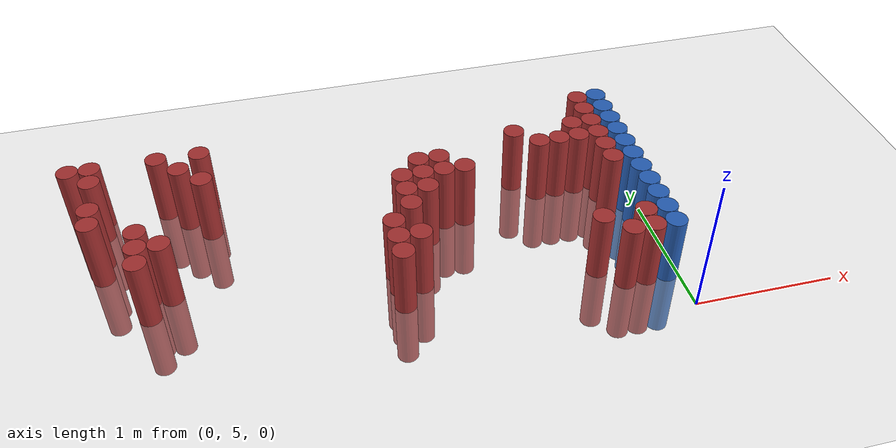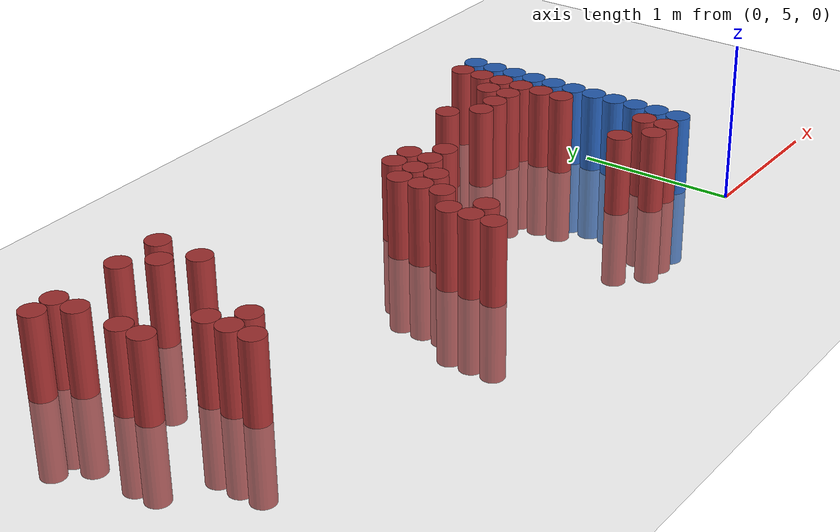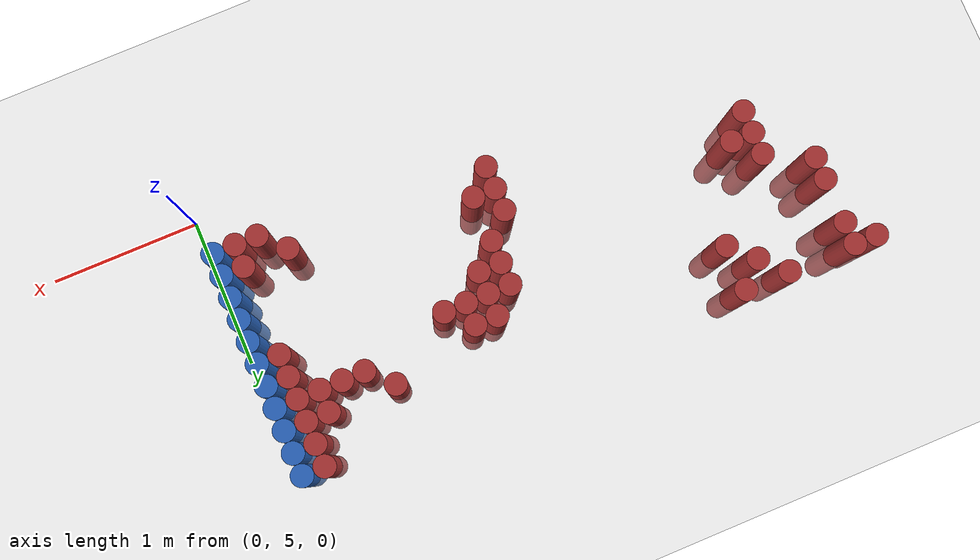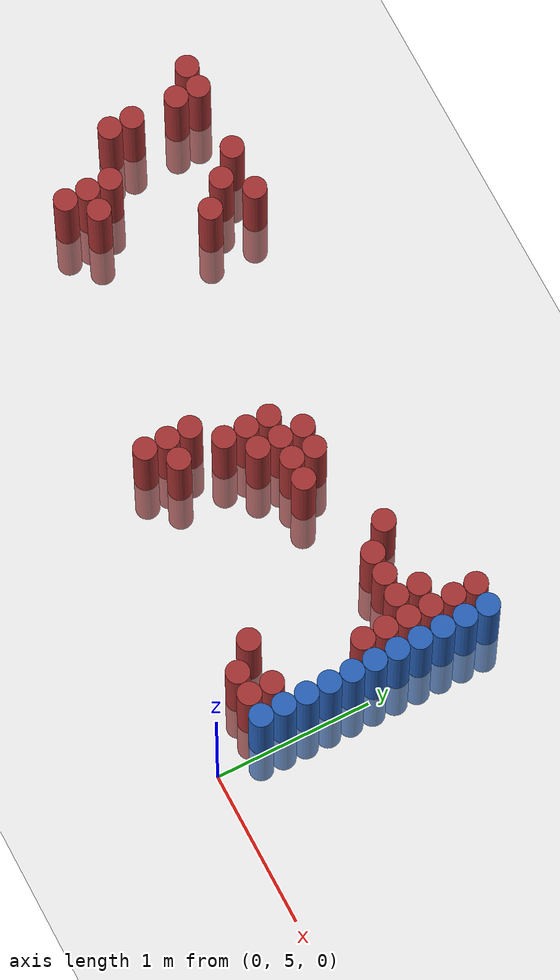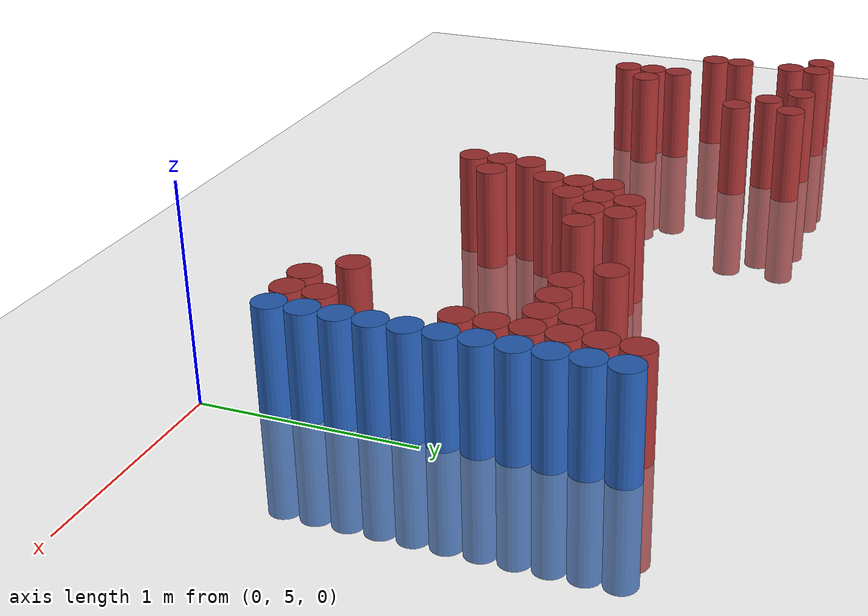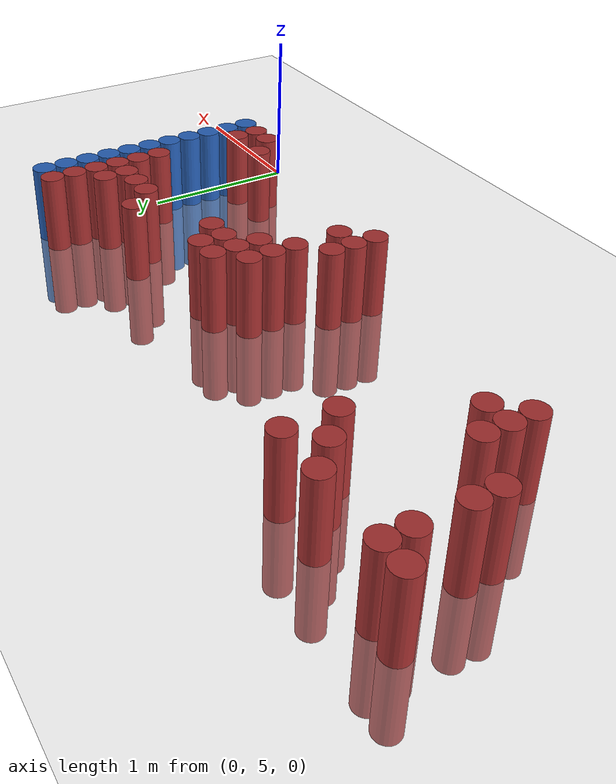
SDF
<sdf version="1.6">
 <world name="default">
  <model name="ground_plane">
   <static>1</static>
   <link name="link">
    <collision name="collision">
     <geometry><plane><normal>0 0 1</normal><size>100 100</size></plane></geometry>
     <surface><friction><ode><mu>100</mu><mu2>50</mu2></ode></friction></surface>
    </collision>
    <visual name="visual">
     <cast_shadows>0</cast_shadows>
     <geometry><plane><normal>0 0 1</normal><size>100 100</size></plane></geometry>
     <material>
      <script><uri>file://media/materials/scripts/gazebo.material</uri><name>Gazebo/Grey</name></script>
     </material>
    </visual>
   </link>
  </model>
  <model name="unit_cylinder_152">
   <static>1</static>
   <pose>-3.975000 6.825000 0.000000 0.000000 0.000000 0.000000</pose>
   <link name="link">
    <inertial>
     <mass>1</mass>
     <inertia><ixx>0.145833</ixx><ixy>0</ixy><ixz>0</ixz><iyy>0.145833</iyy><iyz>0</iyz><izz>0.125</izz></inertia>
    </inertial>
    <collision name="collision">
     <geometry><cylinder><radius>0.075000</radius><length>1</length></cylinder></geometry>
    </collision>
    <visual name="visual">
     <geometry><cylinder><radius>0.075000</radius><length>1</length></cylinder></geometry>
     <material>
      <ambient>0.648000 0.192000 0.192000 1</ambient>
      <diffuse>0.648000 0.192000 0.192000 1</diffuse>
     </material>
     <material>
      <script><name>Gazebo/Grey</name><uri>file://media/materials/scripts/gazebo.material</uri></script>
     </material>
    </visual>
   </link>
  </model>
  <model name="unit_cylinder_154">
   <static>1</static>
   <pose>-3.825000 6.225000 0.000000 0.000000 0.000000 0.000000</pose>
   <link name="link">
    <inertial>
     <mass>1</mass>
     <inertia><ixx>0.145833</ixx><ixy>0</ixy><ixz>0</ixz><iyy>0.145833</iyy><iyz>0</iyz><izz>0.125</izz></inertia>
    </inertial>
    <collision name="collision">
     <geometry><cylinder><radius>0.075000</radius><length>1</length></cylinder></geometry>
    </collision>
    <visual name="visual">
     <geometry><cylinder><radius>0.075000</radius><length>1</length></cylinder></geometry>
     <material>
      <ambient>0.648000 0.192000 0.192000 1</ambient>
      <diffuse>0.648000 0.192000 0.192000 1</diffuse>
     </material>
     <material>
      <script><name>Gazebo/Grey</name><uri>file://media/materials/scripts/gazebo.material</uri></script>
     </material>
    </visual>
   </link>
  </model>
  <model name="unit_cylinder_155">
   <static>1</static>
   <pose>-3.825000 6.375000 0.000000 0.000000 0.000000 0.000000</pose>
   <link name="link">
    <inertial>
     <mass>1</mass>
     <inertia><ixx>0.145833</ixx><ixy>0</ixy><ixz>0</ixz><iyy>0.145833</iyy><iyz>0</iyz><izz>0.125</izz></inertia>
    </inertial>
    <collision name="collision">
     <geometry><cylinder><radius>0.075000</radius><length>1</length></cylinder></geometry>
    </collision>
    <visual name="visual">
     <geometry><cylinder><radius>0.075000</radius><length>1</length></cylinder></geometry>
     <material>
      <ambient>0.648000 0.192000 0.192000 1</ambient>
      <diffuse>0.648000 0.192000 0.192000 1</diffuse>
     </material>
     <material>
      <script><name>Gazebo/Grey</name><uri>file://media/materials/scripts/gazebo.material</uri></script>
     </material>
    </visual>
   </link>
  </model>
  <model name="unit_cylinder_156">
   <static>1</static>
   <pose>-3.825000 6.675000 0.000000 0.000000 0.000000 0.000000</pose>
   <link name="link">
    <inertial>
     <mass>1</mass>
     <inertia><ixx>0.145833</ixx><ixy>0</ixy><ixz>0</ixz><iyy>0.145833</iyy><iyz>0</iyz><izz>0.125</izz></inertia>
    </inertial>
    <collision name="collision">
     <geometry><cylinder><radius>0.075000</radius><length>1</length></cylinder></geometry>
    </collision>
    <visual name="visual">
     <geometry><cylinder><radius>0.075000</radius><length>1</length></cylinder></geometry>
     <material>
      <ambient>0.648000 0.192000 0.192000 1</ambient>
      <diffuse>0.648000 0.192000 0.192000 1</diffuse>
     </material>
     <material>
      <script><name>Gazebo/Grey</name><uri>file://media/materials/scripts/gazebo.material</uri></script>
     </material>
    </visual>
   </link>
  </model>
  <model name="unit_cylinder_157">
   <static>1</static>
   <pose>-3.825000 6.825000 0.000000 0.000000 0.000000 0.000000</pose>
   <link name="link">
    <inertial>
     <mass>1</mass>
     <inertia><ixx>0.145833</ixx><ixy>0</ixy><ixz>0</ixz><iyy>0.145833</iyy><iyz>0</iyz><izz>0.125</izz></inertia>
    </inertial>
    <collision name="collision">
     <geometry><cylinder><radius>0.075000</radius><length>1</length></cylinder></geometry>
    </collision>
    <visual name="visual">
     <geometry><cylinder><radius>0.075000</radius><length>1</length></cylinder></geometry>
     <material>
      <ambient>0.648000 0.192000 0.192000 1</ambient>
      <diffuse>0.648000 0.192000 0.192000 1</diffuse>
     </material>
     <material>
      <script><name>Gazebo/Grey</name><uri>file://media/materials/scripts/gazebo.material</uri></script>
     </material>
    </visual>
   </link>
  </model>
  <model name="unit_cylinder_158">
   <static>1</static>
   <pose>-3.525000 5.775000 0.000000 0.000000 0.000000 0.000000</pose>
   <link name="link">
    <inertial>
     <mass>1</mass>
     <inertia><ixx>0.145833</ixx><ixy>0</ixy><ixz>0</ixz><iyy>0.145833</iyy><iyz>0</iyz><izz>0.125</izz></inertia>
    </inertial>
    <collision name="collision">
     <geometry><cylinder><radius>0.075000</radius><length>1</length></cylinder></geometry>
    </collision>
    <visual name="visual">
     <geometry><cylinder><radius>0.075000</radius><length>1</length></cylinder></geometry>
     <material>
      <ambient>0.648000 0.192000 0.192000 1</ambient>
      <diffuse>0.648000 0.192000 0.192000 1</diffuse>
     </material>
     <material>
      <script><name>Gazebo/Grey</name><uri>file://media/materials/scripts/gazebo.material</uri></script>
     </material>
    </visual>
   </link>
  </model>
  <model name="unit_cylinder_159">
   <static>1</static>
   <pose>-3.525000 5.925000 0.000000 0.000000 0.000000 0.000000</pose>
   <link name="link">
    <inertial>
     <mass>1</mass>
     <inertia><ixx>0.145833</ixx><ixy>0</ixy><ixz>0</ixz><iyy>0.145833</iyy><iyz>0</iyz><izz>0.125</izz></inertia>
    </inertial>
    <collision name="collision">
     <geometry><cylinder><radius>0.075000</radius><length>1</length></cylinder></geometry>
    </collision>
    <visual name="visual">
     <geometry><cylinder><radius>0.075000</radius><length>1</length></cylinder></geometry>
     <material>
      <ambient>0.648000 0.192000 0.192000 1</ambient>
      <diffuse>0.648000 0.192000 0.192000 1</diffuse>
     </material>
     <material>
      <script><name>Gazebo/Grey</name><uri>file://media/materials/scripts/gazebo.material</uri></script>
     </material>
    </visual>
   </link>
  </model>
  <model name="unit_cylinder_160">
   <static>1</static>
   <pose>-3.525000 6.075000 0.000000 0.000000 0.000000 0.000000</pose>
   <link name="link">
    <inertial>
     <mass>1</mass>
     <inertia><ixx>0.145833</ixx><ixy>0</ixy><ixz>0</ixz><iyy>0.145833</iyy><iyz>0</iyz><izz>0.125</izz></inertia>
    </inertial>
    <collision name="collision">
     <geometry><cylinder><radius>0.075000</radius><length>1</length></cylinder></geometry>
    </collision>
    <visual name="visual">
     <geometry><cylinder><radius>0.075000</radius><length>1</length></cylinder></geometry>
     <material>
      <ambient>0.648000 0.192000 0.192000 1</ambient>
      <diffuse>0.648000 0.192000 0.192000 1</diffuse>
     </material>
     <material>
      <script><name>Gazebo/Grey</name><uri>file://media/materials/scripts/gazebo.material</uri></script>
     </material>
    </visual>
   </link>
  </model>
  <model name="unit_cylinder_165">
   <static>1</static>
   <pose>-3.375000 5.925000 0.000000 0.000000 0.000000 0.000000</pose>
   <link name="link">
    <inertial>
     <mass>1</mass>
     <inertia><ixx>0.145833</ixx><ixy>0</ixy><ixz>0</ixz><iyy>0.145833</iyy><iyz>0</iyz><izz>0.125</izz></inertia>
    </inertial>
    <collision name="collision">
     <geometry><cylinder><radius>0.075000</radius><length>1</length></cylinder></geometry>
    </collision>
    <visual name="visual">
     <geometry><cylinder><radius>0.075000</radius><length>1</length></cylinder></geometry>
     <material>
      <ambient>0.648000 0.192000 0.192000 1</ambient>
      <diffuse>0.648000 0.192000 0.192000 1</diffuse>
     </material>
     <material>
      <script><name>Gazebo/Grey</name><uri>file://media/materials/scripts/gazebo.material</uri></script>
     </material>
    </visual>
   </link>
  </model>
  <model name="unit_cylinder_166">
   <static>1</static>
   <pose>-3.375000 6.825000 0.000000 0.000000 0.000000 0.000000</pose>
   <link name="link">
    <inertial>
     <mass>1</mass>
     <inertia><ixx>0.145833</ixx><ixy>0</ixy><ixz>0</ixz><iyy>0.145833</iyy><iyz>0</iyz><izz>0.125</izz></inertia>
    </inertial>
    <collision name="collision">
     <geometry><cylinder><radius>0.075000</radius><length>1</length></cylinder></geometry>
    </collision>
    <visual name="visual">
     <geometry><cylinder><radius>0.075000</radius><length>1</length></cylinder></geometry>
     <material>
      <ambient>0.648000 0.192000 0.192000 1</ambient>
      <diffuse>0.648000 0.192000 0.192000 1</diffuse>
     </material>
     <material>
      <script><name>Gazebo/Grey</name><uri>file://media/materials/scripts/gazebo.material</uri></script>
     </material>
    </visual>
   </link>
  </model>
  <model name="unit_cylinder_171">
   <static>1</static>
   <pose>-3.225000 6.675000 0.000000 0.000000 0.000000 0.000000</pose>
   <link name="link">
    <inertial>
     <mass>1</mass>
     <inertia><ixx>0.145833</ixx><ixy>0</ixy><ixz>0</ixz><iyy>0.145833</iyy><iyz>0</iyz><izz>0.125</izz></inertia>
    </inertial>
    <collision name="collision">
     <geometry><cylinder><radius>0.075000</radius><length>1</length></cylinder></geometry>
    </collision>
    <visual name="visual">
     <geometry><cylinder><radius>0.075000</radius><length>1</length></cylinder></geometry>
     <material>
      <ambient>0.648000 0.192000 0.192000 1</ambient>
      <diffuse>0.648000 0.192000 0.192000 1</diffuse>
     </material>
     <material>
      <script><name>Gazebo/Grey</name><uri>file://media/materials/scripts/gazebo.material</uri></script>
     </material>
    </visual>
   </link>
  </model>
  <model name="unit_cylinder_174">
   <static>1</static>
   <pose>-3.075000 6.525000 0.000000 0.000000 0.000000 0.000000</pose>
   <link name="link">
    <inertial>
     <mass>1</mass>
     <inertia><ixx>0.145833</ixx><ixy>0</ixy><ixz>0</ixz><iyy>0.145833</iyy><iyz>0</iyz><izz>0.125</izz></inertia>
    </inertial>
    <collision name="collision">
     <geometry><cylinder><radius>0.075000</radius><length>1</length></cylinder></geometry>
    </collision>
    <visual name="visual">
     <geometry><cylinder><radius>0.075000</radius><length>1</length></cylinder></geometry>
     <material>
      <ambient>0.648000 0.192000 0.192000 1</ambient>
      <diffuse>0.648000 0.192000 0.192000 1</diffuse>
     </material>
     <material>
      <script><name>Gazebo/Grey</name><uri>file://media/materials/scripts/gazebo.material</uri></script>
     </material>
    </visual>
   </link>
  </model>
  <model name="unit_cylinder_175">
   <static>1</static>
   <pose>-3.075000 6.825000 0.000000 0.000000 0.000000 0.000000</pose>
   <link name="link">
    <inertial>
     <mass>1</mass>
     <inertia><ixx>0.145833</ixx><ixy>0</ixy><ixz>0</ixz><iyy>0.145833</iyy><iyz>0</iyz><izz>0.125</izz></inertia>
    </inertial>
    <collision name="collision">
     <geometry><cylinder><radius>0.075000</radius><length>1</length></cylinder></geometry>
    </collision>
    <visual name="visual">
     <geometry><cylinder><radius>0.075000</radius><length>1</length></cylinder></geometry>
     <material>
      <ambient>0.648000 0.192000 0.192000 1</ambient>
      <diffuse>0.648000 0.192000 0.192000 1</diffuse>
     </material>
     <material>
      <script><name>Gazebo/Grey</name><uri>file://media/materials/scripts/gazebo.material</uri></script>
     </material>
    </visual>
   </link>
  </model>
  <model name="unit_cylinder_183">
   <static>1</static>
   <pose>-1.875000 5.475000 0.000000 0.000000 0.000000 0.000000</pose>
   <link name="link">
    <inertial>
     <mass>1</mass>
     <inertia><ixx>0.145833</ixx><ixy>0</ixy><ixz>0</ixz><iyy>0.145833</iyy><iyz>0</iyz><izz>0.125</izz></inertia>
    </inertial>
    <collision name="collision">
     <geometry><cylinder><radius>0.075000</radius><length>1</length></cylinder></geometry>
    </collision>
    <visual name="visual">
     <geometry><cylinder><radius>0.075000</radius><length>1</length></cylinder></geometry>
     <material>
      <ambient>0.648000 0.192000 0.192000 1</ambient>
      <diffuse>0.648000 0.192000 0.192000 1</diffuse>
     </material>
     <material>
      <script><name>Gazebo/Grey</name><uri>file://media/materials/scripts/gazebo.material</uri></script>
     </material>
    </visual>
   </link>
  </model>
  <model name="unit_cylinder_184">
   <static>1</static>
   <pose>-1.875000 5.625000 0.000000 0.000000 0.000000 0.000000</pose>
   <link name="link">
    <inertial>
     <mass>1</mass>
     <inertia><ixx>0.145833</ixx><ixy>0</ixy><ixz>0</ixz><iyy>0.145833</iyy><iyz>0</iyz><izz>0.125</izz></inertia>
    </inertial>
    <collision name="collision">
     <geometry><cylinder><radius>0.075000</radius><length>1</length></cylinder></geometry>
    </collision>
    <visual name="visual">
     <geometry><cylinder><radius>0.075000</radius><length>1</length></cylinder></geometry>
     <material>
      <ambient>0.648000 0.192000 0.192000 1</ambient>
      <diffuse>0.648000 0.192000 0.192000 1</diffuse>
     </material>
     <material>
      <script><name>Gazebo/Grey</name><uri>file://media/materials/scripts/gazebo.material</uri></script>
     </material>
    </visual>
   </link>
  </model>
  <model name="unit_cylinder_185">
   <static>1</static>
   <pose>-1.875000 5.775000 0.000000 0.000000 0.000000 0.000000</pose>
   <link name="link">
    <inertial>
     <mass>1</mass>
     <inertia><ixx>0.145833</ixx><ixy>0</ixy><ixz>0</ixz><iyy>0.145833</iyy><iyz>0</iyz><izz>0.125</izz></inertia>
    </inertial>
    <collision name="collision">
     <geometry><cylinder><radius>0.075000</radius><length>1</length></cylinder></geometry>
    </collision>
    <visual name="visual">
     <geometry><cylinder><radius>0.075000</radius><length>1</length></cylinder></geometry>
     <material>
      <ambient>0.648000 0.192000 0.192000 1</ambient>
      <diffuse>0.648000 0.192000 0.192000 1</diffuse>
     </material>
     <material>
      <script><name>Gazebo/Grey</name><uri>file://media/materials/scripts/gazebo.material</uri></script>
     </material>
    </visual>
   </link>
  </model>
  <model name="unit_cylinder_188">
   <static>1</static>
   <pose>-1.725000 5.625000 0.000000 0.000000 0.000000 0.000000</pose>
   <link name="link">
    <inertial>
     <mass>1</mass>
     <inertia><ixx>0.145833</ixx><ixy>0</ixy><ixz>0</ixz><iyy>0.145833</iyy><iyz>0</iyz><izz>0.125</izz></inertia>
    </inertial>
    <collision name="collision">
     <geometry><cylinder><radius>0.075000</radius><length>1</length></cylinder></geometry>
    </collision>
    <visual name="visual">
     <geometry><cylinder><radius>0.075000</radius><length>1</length></cylinder></geometry>
     <material>
      <ambient>0.648000 0.192000 0.192000 1</ambient>
      <diffuse>0.648000 0.192000 0.192000 1</diffuse>
     </material>
     <material>
      <script><name>Gazebo/Grey</name><uri>file://media/materials/scripts/gazebo.material</uri></script>
     </material>
    </visual>
   </link>
  </model>
  <model name="unit_cylinder_189">
   <static>1</static>
   <pose>-1.725000 5.925000 0.000000 0.000000 0.000000 0.000000</pose>
   <link name="link">
    <inertial>
     <mass>1</mass>
     <inertia><ixx>0.145833</ixx><ixy>0</ixy><ixz>0</ixz><iyy>0.145833</iyy><iyz>0</iyz><izz>0.125</izz></inertia>
    </inertial>
    <collision name="collision">
     <geometry><cylinder><radius>0.075000</radius><length>1</length></cylinder></geometry>
    </collision>
    <visual name="visual">
     <geometry><cylinder><radius>0.075000</radius><length>1</length></cylinder></geometry>
     <material>
      <ambient>0.648000 0.192000 0.192000 1</ambient>
      <diffuse>0.648000 0.192000 0.192000 1</diffuse>
     </material>
     <material>
      <script><name>Gazebo/Grey</name><uri>file://media/materials/scripts/gazebo.material</uri></script>
     </material>
    </visual>
   </link>
  </model>
  <model name="unit_cylinder_190">
   <static>1</static>
   <pose>-1.725000 6.075000 0.000000 0.000000 0.000000 0.000000</pose>
   <link name="link">
    <inertial>
     <mass>1</mass>
     <inertia><ixx>0.145833</ixx><ixy>0</ixy><ixz>0</ixz><iyy>0.145833</iyy><iyz>0</iyz><izz>0.125</izz></inertia>
    </inertial>
    <collision name="collision">
     <geometry><cylinder><radius>0.075000</radius><length>1</length></cylinder></geometry>
    </collision>
    <visual name="visual">
     <geometry><cylinder><radius>0.075000</radius><length>1</length></cylinder></geometry>
     <material>
      <ambient>0.648000 0.192000 0.192000 1</ambient>
      <diffuse>0.648000 0.192000 0.192000 1</diffuse>
     </material>
     <material>
      <script><name>Gazebo/Grey</name><uri>file://media/materials/scripts/gazebo.material</uri></script>
     </material>
    </visual>
   </link>
  </model>
  <model name="unit_cylinder_191">
   <static>1</static>
   <pose>-1.725000 6.225000 0.000000 0.000000 0.000000 0.000000</pose>
   <link name="link">
    <inertial>
     <mass>1</mass>
     <inertia><ixx>0.145833</ixx><ixy>0</ixy><ixz>0</ixz><iyy>0.145833</iyy><iyz>0</iyz><izz>0.125</izz></inertia>
    </inertial>
    <collision name="collision">
     <geometry><cylinder><radius>0.075000</radius><length>1</length></cylinder></geometry>
    </collision>
    <visual name="visual">
     <geometry><cylinder><radius>0.075000</radius><length>1</length></cylinder></geometry>
     <material>
      <ambient>0.648000 0.192000 0.192000 1</ambient>
      <diffuse>0.648000 0.192000 0.192000 1</diffuse>
     </material>
     <material>
      <script><name>Gazebo/Grey</name><uri>file://media/materials/scripts/gazebo.material</uri></script>
     </material>
    </visual>
   </link>
  </model>
  <model name="unit_cylinder_192">
   <static>1</static>
   <pose>-1.575000 6.075000 0.000000 0.000000 0.000000 0.000000</pose>
   <link name="link">
    <inertial>
     <mass>1</mass>
     <inertia><ixx>0.145833</ixx><ixy>0</ixy><ixz>0</ixz><iyy>0.145833</iyy><iyz>0</iyz><izz>0.125</izz></inertia>
    </inertial>
    <collision name="collision">
     <geometry><cylinder><radius>0.075000</radius><length>1</length></cylinder></geometry>
    </collision>
    <visual name="visual">
     <geometry><cylinder><radius>0.075000</radius><length>1</length></cylinder></geometry>
     <material>
      <ambient>0.648000 0.192000 0.192000 1</ambient>
      <diffuse>0.648000 0.192000 0.192000 1</diffuse>
     </material>
     <material>
      <script><name>Gazebo/Grey</name><uri>file://media/materials/scripts/gazebo.material</uri></script>
     </material>
    </visual>
   </link>
  </model>
  <model name="unit_cylinder_193">
   <static>1</static>
   <pose>-1.575000 6.225000 0.000000 0.000000 0.000000 0.000000</pose>
   <link name="link">
    <inertial>
     <mass>1</mass>
     <inertia><ixx>0.145833</ixx><ixy>0</ixy><ixz>0</ixz><iyy>0.145833</iyy><iyz>0</iyz><izz>0.125</izz></inertia>
    </inertial>
    <collision name="collision">
     <geometry><cylinder><radius>0.075000</radius><length>1</length></cylinder></geometry>
    </collision>
    <visual name="visual">
     <geometry><cylinder><radius>0.075000</radius><length>1</length></cylinder></geometry>
     <material>
      <ambient>0.648000 0.192000 0.192000 1</ambient>
      <diffuse>0.648000 0.192000 0.192000 1</diffuse>
     </material>
     <material>
      <script><name>Gazebo/Grey</name><uri>file://media/materials/scripts/gazebo.material</uri></script>
     </material>
    </visual>
   </link>
  </model>
  <model name="unit_cylinder_194">
   <static>1</static>
   <pose>-1.575000 6.375000 0.000000 0.000000 0.000000 0.000000</pose>
   <link name="link">
    <inertial>
     <mass>1</mass>
     <inertia><ixx>0.145833</ixx><ixy>0</ixy><ixz>0</ixz><iyy>0.145833</iyy><iyz>0</iyz><izz>0.125</izz></inertia>
    </inertial>
    <collision name="collision">
     <geometry><cylinder><radius>0.075000</radius><length>1</length></cylinder></geometry>
    </collision>
    <visual name="visual">
     <geometry><cylinder><radius>0.075000</radius><length>1</length></cylinder></geometry>
     <material>
      <ambient>0.648000 0.192000 0.192000 1</ambient>
      <diffuse>0.648000 0.192000 0.192000 1</diffuse>
     </material>
     <material>
      <script><name>Gazebo/Grey</name><uri>file://media/materials/scripts/gazebo.material</uri></script>
     </material>
    </visual>
   </link>
  </model>
  <model name="unit_cylinder_195">
   <static>1</static>
   <pose>-1.425000 6.225000 0.000000 0.000000 0.000000 0.000000</pose>
   <link name="link">
    <inertial>
     <mass>1</mass>
     <inertia><ixx>0.145833</ixx><ixy>0</ixy><ixz>0</ixz><iyy>0.145833</iyy><iyz>0</iyz><izz>0.125</izz></inertia>
    </inertial>
    <collision name="collision">
     <geometry><cylinder><radius>0.075000</radius><length>1</length></cylinder></geometry>
    </collision>
    <visual name="visual">
     <geometry><cylinder><radius>0.075000</radius><length>1</length></cylinder></geometry>
     <material>
      <ambient>0.648000 0.192000 0.192000 1</ambient>
      <diffuse>0.648000 0.192000 0.192000 1</diffuse>
     </material>
     <material>
      <script><name>Gazebo/Grey</name><uri>file://media/materials/scripts/gazebo.material</uri></script>
     </material>
    </visual>
   </link>
  </model>
  <model name="unit_cylinder_196">
   <static>1</static>
   <pose>-1.425000 6.375000 0.000000 0.000000 0.000000 0.000000</pose>
   <link name="link">
    <inertial>
     <mass>1</mass>
     <inertia><ixx>0.145833</ixx><ixy>0</ixy><ixz>0</ixz><iyy>0.145833</iyy><iyz>0</iyz><izz>0.125</izz></inertia>
    </inertial>
    <collision name="collision">
     <geometry><cylinder><radius>0.075000</radius><length>1</length></cylinder></geometry>
    </collision>
    <visual name="visual">
     <geometry><cylinder><radius>0.075000</radius><length>1</length></cylinder></geometry>
     <material>
      <ambient>0.648000 0.192000 0.192000 1</ambient>
      <diffuse>0.648000 0.192000 0.192000 1</diffuse>
     </material>
     <material>
      <script><name>Gazebo/Grey</name><uri>file://media/materials/scripts/gazebo.material</uri></script>
     </material>
    </visual>
   </link>
  </model>
  <model name="unit_cylinder_197">
   <static>1</static>
   <pose>-1.275000 6.225000 0.000000 0.000000 0.000000 0.000000</pose>
   <link name="link">
    <inertial>
     <mass>1</mass>
     <inertia><ixx>0.145833</ixx><ixy>0</ixy><ixz>0</ixz><iyy>0.145833</iyy><iyz>0</iyz><izz>0.125</izz></inertia>
    </inertial>
    <collision name="collision">
     <geometry><cylinder><radius>0.075000</radius><length>1</length></cylinder></geometry>
    </collision>
    <visual name="visual">
     <geometry><cylinder><radius>0.075000</radius><length>1</length></cylinder></geometry>
     <material>
      <ambient>0.648000 0.192000 0.192000 1</ambient>
      <diffuse>0.648000 0.192000 0.192000 1</diffuse>
     </material>
     <material>
      <script><name>Gazebo/Grey</name><uri>file://media/materials/scripts/gazebo.material</uri></script>
     </material>
    </visual>
   </link>
  </model>
  <model name="unit_cylinder_203">
   <static>1</static>
   <pose>-0.825000 6.525000 0.000000 0.000000 0.000000 0.000000</pose>
   <link name="link">
    <inertial>
     <mass>1</mass>
     <inertia><ixx>0.145833</ixx><ixy>0</ixy><ixz>0</ixz><iyy>0.145833</iyy><iyz>0</iyz><izz>0.125</izz></inertia>
    </inertial>
    <collision name="collision">
     <geometry><cylinder><radius>0.075000</radius><length>1</length></cylinder></geometry>
    </collision>
    <visual name="visual">
     <geometry><cylinder><radius>0.075000</radius><length>1</length></cylinder></geometry>
     <material>
      <ambient>0.648000 0.192000 0.192000 1</ambient>
      <diffuse>0.648000 0.192000 0.192000 1</diffuse>
     </material>
     <material>
      <script><name>Gazebo/Grey</name><uri>file://media/materials/scripts/gazebo.material</uri></script>
     </material>
    </visual>
   </link>
  </model>
  <model name="unit_cylinder_208">
   <static>1</static>
   <pose>-0.675000 6.375000 0.000000 0.000000 0.000000 0.000000</pose>
   <link name="link">
    <inertial>
     <mass>1</mass>
     <inertia><ixx>0.145833</ixx><ixy>0</ixy><ixz>0</ixz><iyy>0.145833</iyy><iyz>0</iyz><izz>0.125</izz></inertia>
    </inertial>
    <collision name="collision">
     <geometry><cylinder><radius>0.075000</radius><length>1</length></cylinder></geometry>
    </collision>
    <visual name="visual">
     <geometry><cylinder><radius>0.075000</radius><length>1</length></cylinder></geometry>
     <material>
      <ambient>0.648000 0.192000 0.192000 1</ambient>
      <diffuse>0.648000 0.192000 0.192000 1</diffuse>
     </material>
     <material>
      <script><name>Gazebo/Grey</name><uri>file://media/materials/scripts/gazebo.material</uri></script>
     </material>
    </visual>
   </link>
  </model>
  <model name="unit_cylinder_210">
   <static>1</static>
   <pose>-0.525000 5.475000 0.000000 0.000000 0.000000 0.000000</pose>
   <link name="link">
    <inertial>
     <mass>1</mass>
     <inertia><ixx>0.145833</ixx><ixy>0</ixy><ixz>0</ixz><iyy>0.145833</iyy><iyz>0</iyz><izz>0.125</izz></inertia>
    </inertial>
    <collision name="collision">
     <geometry><cylinder><radius>0.075000</radius><length>1</length></cylinder></geometry>
    </collision>
    <visual name="visual">
     <geometry><cylinder><radius>0.075000</radius><length>1</length></cylinder></geometry>
     <material>
      <ambient>0.648000 0.192000 0.192000 1</ambient>
      <diffuse>0.648000 0.192000 0.192000 1</diffuse>
     </material>
     <material>
      <script><name>Gazebo/Grey</name><uri>file://media/materials/scripts/gazebo.material</uri></script>
     </material>
    </visual>
   </link>
  </model>
  <model name="unit_cylinder_211">
   <static>1</static>
   <pose>-0.525000 6.375000 0.000000 0.000000 0.000000 0.000000</pose>
   <link name="link">
    <inertial>
     <mass>1</mass>
     <inertia><ixx>0.145833</ixx><ixy>0</ixy><ixz>0</ixz><iyy>0.145833</iyy><iyz>0</iyz><izz>0.125</izz></inertia>
    </inertial>
    <collision name="collision">
     <geometry><cylinder><radius>0.075000</radius><length>1</length></cylinder></geometry>
    </collision>
    <visual name="visual">
     <geometry><cylinder><radius>0.075000</radius><length>1</length></cylinder></geometry>
     <material>
      <ambient>0.648000 0.192000 0.192000 1</ambient>
      <diffuse>0.648000 0.192000 0.192000 1</diffuse>
     </material>
     <material>
      <script><name>Gazebo/Grey</name><uri>file://media/materials/scripts/gazebo.material</uri></script>
     </material>
    </visual>
   </link>
  </model>
  <model name="unit_cylinder_212">
   <static>1</static>
   <pose>-0.375000 5.325000 0.000000 0.000000 0.000000 0.000000</pose>
   <link name="link">
    <inertial>
     <mass>1</mass>
     <inertia><ixx>0.145833</ixx><ixy>0</ixy><ixz>0</ixz><iyy>0.145833</iyy><iyz>0</iyz><izz>0.125</izz></inertia>
    </inertial>
    <collision name="collision">
     <geometry><cylinder><radius>0.075000</radius><length>1</length></cylinder></geometry>
    </collision>
    <visual name="visual">
     <geometry><cylinder><radius>0.075000</radius><length>1</length></cylinder></geometry>
     <material>
      <ambient>0.648000 0.192000 0.192000 1</ambient>
      <diffuse>0.648000 0.192000 0.192000 1</diffuse>
     </material>
     <material>
      <script><name>Gazebo/Grey</name><uri>file://media/materials/scripts/gazebo.material</uri></script>
     </material>
    </visual>
   </link>
  </model>
  <model name="unit_cylinder_213">
   <static>1</static>
   <pose>-0.375000 6.375000 0.000000 0.000000 0.000000 0.000000</pose>
   <link name="link">
    <inertial>
     <mass>1</mass>
     <inertia><ixx>0.145833</ixx><ixy>0</ixy><ixz>0</ixz><iyy>0.145833</iyy><iyz>0</iyz><izz>0.125</izz></inertia>
    </inertial>
    <collision name="collision">
     <geometry><cylinder><radius>0.075000</radius><length>1</length></cylinder></geometry>
    </collision>
    <visual name="visual">
     <geometry><cylinder><radius>0.075000</radius><length>1</length></cylinder></geometry>
     <material>
      <ambient>0.648000 0.192000 0.192000 1</ambient>
      <diffuse>0.648000 0.192000 0.192000 1</diffuse>
     </material>
     <material>
      <script><name>Gazebo/Grey</name><uri>file://media/materials/scripts/gazebo.material</uri></script>
     </material>
    </visual>
   </link>
  </model>
  <model name="unit_cylinder_214">
   <static>1</static>
   <pose>-0.375000 6.525000 0.000000 0.000000 0.000000 0.000000</pose>
   <link name="link">
    <inertial>
     <mass>1</mass>
     <inertia><ixx>0.145833</ixx><ixy>0</ixy><ixz>0</ixz><iyy>0.145833</iyy><iyz>0</iyz><izz>0.125</izz></inertia>
    </inertial>
    <collision name="collision">
     <geometry><cylinder><radius>0.075000</radius><length>1</length></cylinder></geometry>
    </collision>
    <visual name="visual">
     <geometry><cylinder><radius>0.075000</radius><length>1</length></cylinder></geometry>
     <material>
      <ambient>0.648000 0.192000 0.192000 1</ambient>
      <diffuse>0.648000 0.192000 0.192000 1</diffuse>
     </material>
     <material>
      <script><name>Gazebo/Grey</name><uri>file://media/materials/scripts/gazebo.material</uri></script>
     </material>
    </visual>
   </link>
  </model>
  <model name="unit_cylinder_218">
   <static>1</static>
   <pose>-0.225000 5.325000 0.000000 0.000000 0.000000 0.000000</pose>
   <link name="link">
    <inertial>
     <mass>1</mass>
     <inertia><ixx>0.145833</ixx><ixy>0</ixy><ixz>0</ixz><iyy>0.145833</iyy><iyz>0</iyz><izz>0.125</izz></inertia>
    </inertial>
    <collision name="collision">
     <geometry><cylinder><radius>0.075000</radius><length>1</length></cylinder></geometry>
    </collision>
    <visual name="visual">
     <geometry><cylinder><radius>0.075000</radius><length>1</length></cylinder></geometry>
     <material>
      <ambient>0.648000 0.192000 0.192000 1</ambient>
      <diffuse>0.648000 0.192000 0.192000 1</diffuse>
     </material>
     <material>
      <script><name>Gazebo/Grey</name><uri>file://media/materials/scripts/gazebo.material</uri></script>
     </material>
    </visual>
   </link>
  </model>
  <model name="unit_cylinder_219">
   <static>1</static>
   <pose>-0.225000 5.475000 0.000000 0.000000 0.000000 0.000000</pose>
   <link name="link">
    <inertial>
     <mass>1</mass>
     <inertia><ixx>0.145833</ixx><ixy>0</ixy><ixz>0</ixz><iyy>0.145833</iyy><iyz>0</iyz><izz>0.125</izz></inertia>
    </inertial>
    <collision name="collision">
     <geometry><cylinder><radius>0.075000</radius><length>1</length></cylinder></geometry>
    </collision>
    <visual name="visual">
     <geometry><cylinder><radius>0.075000</radius><length>1</length></cylinder></geometry>
     <material>
      <ambient>0.648000 0.192000 0.192000 1</ambient>
      <diffuse>0.648000 0.192000 0.192000 1</diffuse>
     </material>
     <material>
      <script><name>Gazebo/Grey</name><uri>file://media/materials/scripts/gazebo.material</uri></script>
     </material>
    </visual>
   </link>
  </model>
  <model name="unit_cylinder_220">
   <static>1</static>
   <pose>-0.225000 6.075000 0.000000 0.000000 0.000000 0.000000</pose>
   <link name="link">
    <inertial>
     <mass>1</mass>
     <inertia><ixx>0.145833</ixx><ixy>0</ixy><ixz>0</ixz><iyy>0.145833</iyy><iyz>0</iyz><izz>0.125</izz></inertia>
    </inertial>
    <collision name="collision">
     <geometry><cylinder><radius>0.075000</radius><length>1</length></cylinder></geometry>
    </collision>
    <visual name="visual">
     <geometry><cylinder><radius>0.075000</radius><length>1</length></cylinder></geometry>
     <material>
      <ambient>0.648000 0.192000 0.192000 1</ambient>
      <diffuse>0.648000 0.192000 0.192000 1</diffuse>
     </material>
     <material>
      <script><name>Gazebo/Grey</name><uri>file://media/materials/scripts/gazebo.material</uri></script>
     </material>
    </visual>
   </link>
  </model>
  <model name="unit_cylinder_221">
   <static>1</static>
   <pose>-0.225000 6.225000 0.000000 0.000000 0.000000 0.000000</pose>
   <link name="link">
    <inertial>
     <mass>1</mass>
     <inertia><ixx>0.145833</ixx><ixy>0</ixy><ixz>0</ixz><iyy>0.145833</iyy><iyz>0</iyz><izz>0.125</izz></inertia>
    </inertial>
    <collision name="collision">
     <geometry><cylinder><radius>0.075000</radius><length>1</length></cylinder></geometry>
    </collision>
    <visual name="visual">
     <geometry><cylinder><radius>0.075000</radius><length>1</length></cylinder></geometry>
     <material>
      <ambient>0.648000 0.192000 0.192000 1</ambient>
      <diffuse>0.648000 0.192000 0.192000 1</diffuse>
     </material>
     <material>
      <script><name>Gazebo/Grey</name><uri>file://media/materials/scripts/gazebo.material</uri></script>
     </material>
    </visual>
   </link>
  </model>
  <model name="unit_cylinder_222">
   <static>1</static>
   <pose>-0.225000 6.375000 0.000000 0.000000 0.000000 0.000000</pose>
   <link name="link">
    <inertial>
     <mass>1</mass>
     <inertia><ixx>0.145833</ixx><ixy>0</ixy><ixz>0</ixz><iyy>0.145833</iyy><iyz>0</iyz><izz>0.125</izz></inertia>
    </inertial>
    <collision name="collision">
     <geometry><cylinder><radius>0.075000</radius><length>1</length></cylinder></geometry>
    </collision>
    <visual name="visual">
     <geometry><cylinder><radius>0.075000</radius><length>1</length></cylinder></geometry>
     <material>
      <ambient>0.648000 0.192000 0.192000 1</ambient>
      <diffuse>0.648000 0.192000 0.192000 1</diffuse>
     </material>
     <material>
      <script><name>Gazebo/Grey</name><uri>file://media/materials/scripts/gazebo.material</uri></script>
     </material>
    </visual>
   </link>
  </model>
  <model name="unit_cylinder_223">
   <static>1</static>
   <pose>-0.225000 6.525000 0.000000 0.000000 0.000000 0.000000</pose>
   <link name="link">
    <inertial>
     <mass>1</mass>
     <inertia><ixx>0.145833</ixx><ixy>0</ixy><ixz>0</ixz><iyy>0.145833</iyy><iyz>0</iyz><izz>0.125</izz></inertia>
    </inertial>
    <collision name="collision">
     <geometry><cylinder><radius>0.075000</radius><length>1</length></cylinder></geometry>
    </collision>
    <visual name="visual">
     <geometry><cylinder><radius>0.075000</radius><length>1</length></cylinder></geometry>
     <material>
      <ambient>0.648000 0.192000 0.192000 1</ambient>
      <diffuse>0.648000 0.192000 0.192000 1</diffuse>
     </material>
     <material>
      <script><name>Gazebo/Grey</name><uri>file://media/materials/scripts/gazebo.material</uri></script>
     </material>
    </visual>
   </link>
  </model>
  <model name="unit_cylinder_224">
   <static>1</static>
   <pose>-0.225000 6.675000 0.000000 0.000000 0.000000 0.000000</pose>
   <link name="link">
    <inertial>
     <mass>1</mass>
     <inertia><ixx>0.145833</ixx><ixy>0</ixy><ixz>0</ixz><iyy>0.145833</iyy><iyz>0</iyz><izz>0.125</izz></inertia>
    </inertial>
    <collision name="collision">
     <geometry><cylinder><radius>0.075000</radius><length>1</length></cylinder></geometry>
    </collision>
    <visual name="visual">
     <geometry><cylinder><radius>0.075000</radius><length>1</length></cylinder></geometry>
     <material>
      <ambient>0.648000 0.192000 0.192000 1</ambient>
      <diffuse>0.648000 0.192000 0.192000 1</diffuse>
     </material>
     <material>
      <script><name>Gazebo/Grey</name><uri>file://media/materials/scripts/gazebo.material</uri></script>
     </material>
    </visual>
   </link>
  </model>
  <model name="unit_cylinder_225">
   <static>1</static>
   <pose>-0.225000 6.825000 0.000000 0.000000 0.000000 0.000000</pose>
   <link name="link">
    <inertial>
     <mass>1</mass>
     <inertia><ixx>0.145833</ixx><ixy>0</ixy><ixz>0</ixz><iyy>0.145833</iyy><iyz>0</iyz><izz>0.125</izz></inertia>
    </inertial>
    <collision name="collision">
     <geometry><cylinder><radius>0.075000</radius><length>1</length></cylinder></geometry>
    </collision>
    <visual name="visual">
     <geometry><cylinder><radius>0.075000</radius><length>1</length></cylinder></geometry>
     <material>
      <ambient>0.648000 0.192000 0.192000 1</ambient>
      <diffuse>0.648000 0.192000 0.192000 1</diffuse>
     </material>
     <material>
      <script><name>Gazebo/Grey</name><uri>file://media/materials/scripts/gazebo.material</uri></script>
     </material>
    </visual>
   </link>
  </model>
  <model name="unit_cylinder_234">
   <static>1</static>
   <pose>-0.075000 5.325000 0.000000 0.000000 0.000000 0.000000</pose>
   <link name="link">
    <inertial>
     <mass>1</mass>
     <inertia><ixx>0.145833</ixx><ixy>0</ixy><ixz>0</ixz><iyy>0.145833</iyy><iyz>0</iyz><izz>0.125</izz></inertia>
    </inertial>
    <collision name="collision">
     <geometry><cylinder><radius>0.075000</radius><length>1</length></cylinder></geometry>
    </collision>
    <visual name="visual">
     <geometry><cylinder><radius>0.075000</radius><length>1</length></cylinder></geometry>
     <material>
      <ambient>0.152000 0.379000 0.720000 1</ambient>
      <diffuse>0.152000 0.379000 0.720000 1</diffuse>
     </material>
     <material>
      <script><name>Gazebo/Grey</name><uri>file://media/materials/scripts/gazebo.material</uri></script>
     </material>
    </visual>
   </link>
  </model>
  <model name="unit_cylinder_235">
   <static>1</static>
   <pose>-0.075000 5.475000 0.000000 0.000000 0.000000 0.000000</pose>
   <link name="link">
    <inertial>
     <mass>1</mass>
     <inertia><ixx>0.145833</ixx><ixy>0</ixy><ixz>0</ixz><iyy>0.145833</iyy><iyz>0</iyz><izz>0.125</izz></inertia>
    </inertial>
    <collision name="collision">
     <geometry><cylinder><radius>0.075000</radius><length>1</length></cylinder></geometry>
    </collision>
    <visual name="visual">
     <geometry><cylinder><radius>0.075000</radius><length>1</length></cylinder></geometry>
     <material>
      <ambient>0.152000 0.379000 0.720000 1</ambient>
      <diffuse>0.152000 0.379000 0.720000 1</diffuse>
     </material>
     <material>
      <script><name>Gazebo/Grey</name><uri>file://media/materials/scripts/gazebo.material</uri></script>
     </material>
    </visual>
   </link>
  </model>
  <model name="unit_cylinder_236">
   <static>1</static>
   <pose>-0.075000 5.625000 0.000000 0.000000 0.000000 0.000000</pose>
   <link name="link">
    <inertial>
     <mass>1</mass>
     <inertia><ixx>0.145833</ixx><ixy>0</ixy><ixz>0</ixz><iyy>0.145833</iyy><iyz>0</iyz><izz>0.125</izz></inertia>
    </inertial>
    <collision name="collision">
     <geometry><cylinder><radius>0.075000</radius><length>1</length></cylinder></geometry>
    </collision>
    <visual name="visual">
     <geometry><cylinder><radius>0.075000</radius><length>1</length></cylinder></geometry>
     <material>
      <ambient>0.152000 0.379000 0.720000 1</ambient>
      <diffuse>0.152000 0.379000 0.720000 1</diffuse>
     </material>
     <material>
      <script><name>Gazebo/Grey</name><uri>file://media/materials/scripts/gazebo.material</uri></script>
     </material>
    </visual>
   </link>
  </model>
  <model name="unit_cylinder_237">
   <static>1</static>
   <pose>-0.075000 5.775000 0.000000 0.000000 0.000000 0.000000</pose>
   <link name="link">
    <inertial>
     <mass>1</mass>
     <inertia><ixx>0.145833</ixx><ixy>0</ixy><ixz>0</ixz><iyy>0.145833</iyy><iyz>0</iyz><izz>0.125</izz></inertia>
    </inertial>
    <collision name="collision">
     <geometry><cylinder><radius>0.075000</radius><length>1</length></cylinder></geometry>
    </collision>
    <visual name="visual">
     <geometry><cylinder><radius>0.075000</radius><length>1</length></cylinder></geometry>
     <material>
      <ambient>0.152000 0.379000 0.720000 1</ambient>
      <diffuse>0.152000 0.379000 0.720000 1</diffuse>
     </material>
     <material>
      <script><name>Gazebo/Grey</name><uri>file://media/materials/scripts/gazebo.material</uri></script>
     </material>
    </visual>
   </link>
  </model>
  <model name="unit_cylinder_238">
   <static>1</static>
   <pose>-0.075000 5.925000 0.000000 0.000000 0.000000 0.000000</pose>
   <link name="link">
    <inertial>
     <mass>1</mass>
     <inertia><ixx>0.145833</ixx><ixy>0</ixy><ixz>0</ixz><iyy>0.145833</iyy><iyz>0</iyz><izz>0.125</izz></inertia>
    </inertial>
    <collision name="collision">
     <geometry><cylinder><radius>0.075000</radius><length>1</length></cylinder></geometry>
    </collision>
    <visual name="visual">
     <geometry><cylinder><radius>0.075000</radius><length>1</length></cylinder></geometry>
     <material>
      <ambient>0.152000 0.379000 0.720000 1</ambient>
      <diffuse>0.152000 0.379000 0.720000 1</diffuse>
     </material>
     <material>
      <script><name>Gazebo/Grey</name><uri>file://media/materials/scripts/gazebo.material</uri></script>
     </material>
    </visual>
   </link>
  </model>
  <model name="unit_cylinder_239">
   <static>1</static>
   <pose>-0.075000 6.075000 0.000000 0.000000 0.000000 0.000000</pose>
   <link name="link">
    <inertial>
     <mass>1</mass>
     <inertia><ixx>0.145833</ixx><ixy>0</ixy><ixz>0</ixz><iyy>0.145833</iyy><iyz>0</iyz><izz>0.125</izz></inertia>
    </inertial>
    <collision name="collision">
     <geometry><cylinder><radius>0.075000</radius><length>1</length></cylinder></geometry>
    </collision>
    <visual name="visual">
     <geometry><cylinder><radius>0.075000</radius><length>1</length></cylinder></geometry>
     <material>
      <ambient>0.152000 0.379000 0.720000 1</ambient>
      <diffuse>0.152000 0.379000 0.720000 1</diffuse>
     </material>
     <material>
      <script><name>Gazebo/Grey</name><uri>file://media/materials/scripts/gazebo.material</uri></script>
     </material>
    </visual>
   </link>
  </model>
  <model name="unit_cylinder_240">
   <static>1</static>
   <pose>-0.075000 6.225000 0.000000 0.000000 0.000000 0.000000</pose>
   <link name="link">
    <inertial>
     <mass>1</mass>
     <inertia><ixx>0.145833</ixx><ixy>0</ixy><ixz>0</ixz><iyy>0.145833</iyy><iyz>0</iyz><izz>0.125</izz></inertia>
    </inertial>
    <collision name="collision">
     <geometry><cylinder><radius>0.075000</radius><length>1</length></cylinder></geometry>
    </collision>
    <visual name="visual">
     <geometry><cylinder><radius>0.075000</radius><length>1</length></cylinder></geometry>
     <material>
      <ambient>0.152000 0.379000 0.720000 1</ambient>
      <diffuse>0.152000 0.379000 0.720000 1</diffuse>
     </material>
     <material>
      <script><name>Gazebo/Grey</name><uri>file://media/materials/scripts/gazebo.material</uri></script>
     </material>
    </visual>
   </link>
  </model>
  <model name="unit_cylinder_241">
   <static>1</static>
   <pose>-0.075000 6.375000 0.000000 0.000000 0.000000 0.000000</pose>
   <link name="link">
    <inertial>
     <mass>1</mass>
     <inertia><ixx>0.145833</ixx><ixy>0</ixy><ixz>0</ixz><iyy>0.145833</iyy><iyz>0</iyz><izz>0.125</izz></inertia>
    </inertial>
    <collision name="collision">
     <geometry><cylinder><radius>0.075000</radius><length>1</length></cylinder></geometry>
    </collision>
    <visual name="visual">
     <geometry><cylinder><radius>0.075000</radius><length>1</length></cylinder></geometry>
     <material>
      <ambient>0.152000 0.379000 0.720000 1</ambient>
      <diffuse>0.152000 0.379000 0.720000 1</diffuse>
     </material>
     <material>
      <script><name>Gazebo/Grey</name><uri>file://media/materials/scripts/gazebo.material</uri></script>
     </material>
    </visual>
   </link>
  </model>
  <model name="unit_cylinder_242">
   <static>1</static>
   <pose>-0.075000 6.525000 0.000000 0.000000 0.000000 0.000000</pose>
   <link name="link">
    <inertial>
     <mass>1</mass>
     <inertia><ixx>0.145833</ixx><ixy>0</ixy><ixz>0</ixz><iyy>0.145833</iyy><iyz>0</iyz><izz>0.125</izz></inertia>
    </inertial>
    <collision name="collision">
     <geometry><cylinder><radius>0.075000</radius><length>1</length></cylinder></geometry>
    </collision>
    <visual name="visual">
     <geometry><cylinder><radius>0.075000</radius><length>1</length></cylinder></geometry>
     <material>
      <ambient>0.152000 0.379000 0.720000 1</ambient>
      <diffuse>0.152000 0.379000 0.720000 1</diffuse>
     </material>
     <material>
      <script><name>Gazebo/Grey</name><uri>file://media/materials/scripts/gazebo.material</uri></script>
     </material>
    </visual>
   </link>
  </model>
  <model name="unit_cylinder_243">
   <static>1</static>
   <pose>-0.075000 6.675000 0.000000 0.000000 0.000000 0.000000</pose>
   <link name="link">
    <inertial>
     <mass>1</mass>
     <inertia><ixx>0.145833</ixx><ixy>0</ixy><ixz>0</ixz><iyy>0.145833</iyy><iyz>0</iyz><izz>0.125</izz></inertia>
    </inertial>
    <collision name="collision">
     <geometry><cylinder><radius>0.075000</radius><length>1</length></cylinder></geometry>
    </collision>
    <visual name="visual">
     <geometry><cylinder><radius>0.075000</radius><length>1</length></cylinder></geometry>
     <material>
      <ambient>0.152000 0.379000 0.720000 1</ambient>
      <diffuse>0.152000 0.379000 0.720000 1</diffuse>
     </material>
     <material>
      <script><name>Gazebo/Grey</name><uri>file://media/materials/scripts/gazebo.material</uri></script>
     </material>
    </visual>
   </link>
  </model>
  <model name="unit_cylinder_244">
   <static>1</static>
   <pose>-0.075000 6.825000 0.000000 0.000000 0.000000 0.000000</pose>
   <link name="link">
    <inertial>
     <mass>1</mass>
     <inertia><ixx>0.145833</ixx><ixy>0</ixy><ixz>0</ixz><iyy>0.145833</iyy><iyz>0</iyz><izz>0.125</izz></inertia>
    </inertial>
    <collision name="collision">
     <geometry><cylinder><radius>0.075000</radius><length>1</length></cylinder></geometry>
    </collision>
    <visual name="visual">
     <geometry><cylinder><radius>0.075000</radius><length>1</length></cylinder></geometry>
     <material>
      <ambient>0.152000 0.379000 0.720000 1</ambient>
      <diffuse>0.152000 0.379000 0.720000 1</diffuse>
     </material>
     <material>
      <script><name>Gazebo/Grey</name><uri>file://media/materials/scripts/gazebo.material</uri></script>
     </material>
    </visual>
   </link>
  </model>
 </world>
</sdf>
